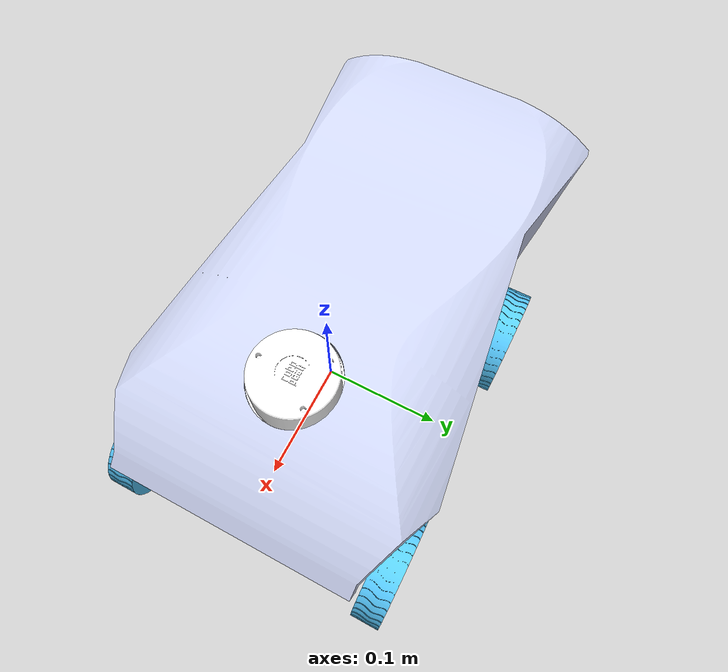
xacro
<?xml version='1.0'?>

<robot name="mark2" xmlns:xacro="http://www.ros.org/wiki/xacro">

  <xacro:include filename="$(find mark2_description)/urdf/mark2.gazebo" />
  <xacro:include filename="$(find mark2_description)/urdf/materials.xacro" />
  <xacro:include filename="$(find mark2_description)/urdf/macros.xacro" />

  <link name="base_link">
    <inertial>
      <origin
        xyz="-0.0216892711019691 0.0103354525192359 -2.11356546216501E-05"
        rpy="0 0 0" />
      <mass
        value="18.0131886031404" />
      <inertia
        ixx="0.0634208971678187"
        ixy="0.00171443755856836"
        ixz="-1.08883604791302E-05"
        iyy="0.122914143505658"
        iyz="-7.40778606255006E-06"
        izz="0.0722386849657522" />
    </inertial>
    <visual>
      <origin
        xyz="0 0 0"
        rpy="0 0 0" />
      <geometry>
        <mesh
          filename="package://mark2_description/meshes/base_link.STL" />
      </geometry>
      <material
        name="">
        <color
          rgba="0.792156862745098 0.819607843137255 0.933333333333333 1" />
      </material>
    </visual>
    <collision>
      <origin
        xyz="0 0 0"
        rpy="0 0 0" />
      <geometry>
        <mesh
          filename="package://mark2_description/meshes/base_link.STL" />
      </geometry>
    </collision>
  </link>

  <link name="FL_Wheel_Link">
    <inertial>
      <origin
        xyz="4.1633E-17 -1.5266E-16 -0.012545"
        rpy="0 0 0" />
      <mass
        value="0.16003" />
      <inertia
        ixx="0.0001273"
        ixy="-1.3285E-19"
        ixz="2.5754E-19"
        iyy="0.0001273"
        iyz="-3.9006E-19"
        izz="0.00023804" />
    </inertial>
    <visual>
      <origin
        xyz="0 0 0"
        rpy="0 0 0" />
      <geometry>
        <mesh
          filename="package://mark2_description/meshes/FL_Wheel_Link.STL" />
      </geometry>
      <material
        name="">
        <color
          rgba="0.34118 0.79216 1 1" />
      </material>
    </visual>
    <collision>
      <origin
        xyz="0 0 0"
        rpy="0 0 0" />
      <geometry>
        <mesh
          filename="package://mark2_description/meshes/FL_Wheel_Link.STL" />
      </geometry>
    </collision>
  </link>
  <joint name="FL_Wheel_Joint"
    type="continuous">
    <origin
      xyz="0.1175 0.1066 -0.039"
      rpy="1.5708 0 0" />
    <parent
      link="base_link" />
    <child
      link="FL_Wheel_Link" />
    <axis
      xyz="0 0 1" />
  </joint>

  <link name="BL_Wheel_Link">
    <inertial>
      <origin
        xyz="2.7756E-17 -6.9389E-17 -0.005545"
        rpy="0 0 0" />
      <mass
        value="0.16003" />
      <inertia
        ixx="0.0001273"
        ixy="4.652E-20"
        ixz="4.0057E-19"
        iyy="0.0001273"
        iyz="-4.1804E-19"
        izz="0.00023804" />
    </inertial>
    <visual>
      <origin
        xyz="0 0 0"
        rpy="0 0 0" />
      <geometry>
        <mesh
          filename="package://mark2_description/meshes/BL_Wheel_Link.STL" />
      </geometry>
      <material
        name="">
        <color
          rgba="0.34118 0.79216 1 1" />
      </material>
    </visual>
    <collision>
      <origin
        xyz="0 0 0"
        rpy="0 0 0" />
      <geometry>
        <mesh
          filename="package://mark2_description/meshes/BL_Wheel_Link.STL" />
      </geometry>
    </collision>
  </link>
  <joint name="BL_Wheel_Joint"
    type="fixed">
    <origin
      xyz="-0.1175 0.1136 -0.039"
      rpy="-1.5708 0 3.1416" />
    <parent
      link="base_link" />
    <child
      link="BL_Wheel_Link" />
    <axis
      xyz="0 0 1" />
  </joint>

  <link name="BR_Wheel_Link">
    <inertial>
      <origin
        xyz="2.7756E-17 -2.7756E-17 0.0055462"
        rpy="1 0 0" />
      <mass
        value="0.15999" />
      <inertia
        ixx="0.00012727"
        ixy="9.8997E-21"
        ixz="-4.0039E-19"
        iyy="0.00012727"
        iyz="3.593E-19"
        izz="0.00023798" />
    </inertial>
    <visual>
      <origin
        xyz="0 0 0"
        rpy="0 0 0" />
      <geometry>
        <mesh
          filename="package://mark2_description/meshes/BR_Wheel_Link.STL" />
      </geometry>
      <material
        name="">
        <color
          rgba="0.34118 0.79216 1 1" />
      </material>
    </visual>
    <collision>
      <origin
        xyz="0 0 0"
        rpy="0 0 0" />
      <geometry>
        <mesh
          filename="package://mark2_description/meshes/BR_Wheel_Link.STL" />
      </geometry>
    </collision>
  </link>
  <joint name="BR_Wheel_Joint"
    type="fixed">
    <origin
      xyz="-0.1175 -0.1136 -0.039"
      rpy="1.5708 0.0038768 0" />
    <parent
      link="base_link" />
    <child
      link="BR_Wheel_Link" />
    <axis
      xyz="0 0 1" />
  </joint>

  <link name="FR_Wheel_Link">
    <inertial>
      <origin
        xyz="2.7756E-17 4.1633E-17 0.012546"
        rpy="0 0 0" />
      <mass
        value="0.15999" />
      <inertia
        ixx="0.00012727"
        ixy="1.9408E-19"
        ixz="-4.5722E-19"
        iyy="0.00012727"
        iyz="4.4947E-19"
        izz="0.00023798" />
    </inertial>
    <visual>
      <origin
        xyz="0 0 0"
        rpy="0 0 0" />
      <geometry>
        <mesh
          filename="package://mark2_description/meshes/FR_Wheel_Link.STL" />
      </geometry>
      <material
        name="">
        <color
          rgba="0.34118 0.79216 1 1" />
      </material>
    </visual>
    <collision>
      <origin
        xyz="0 0 0"
        rpy="0 0 0" />
      <geometry>
        <mesh
          filename="package://mark2_description/meshes/FR_Wheel_Link.STL" />
      </geometry>
    </collision>
  </link>
  <joint name="FR_Wheel_Joint"
    type="continuous">
    <origin
      xyz="0.1175 -0.1066 -0.039"
      rpy="1.5708 -0.0038768 0" />
    <parent
      link="base_link" />
    <child
      link="FR_Wheel_Link" />
    <axis
      xyz="0 0 1" />
  </joint>

  <link name="RPLIdar_Link">
    <inertial>
      <origin
        xyz="0 0 0"
        rpy="0 0 0" />
      <mass
        value="0" />
      <inertia
        ixx="0"
        ixy="0"
        ixz="0"
        iyy="0"
        iyz="0"
        izz="0" />
    </inertial>
    <visual>
      <origin
        xyz="0 0 0"
        rpy="0 0 0" />
      <geometry>
        <mesh
          filename="package://mark2_description/meshes/RPLIdar_Link.STL" />
      </geometry>
      <material
        name="">
        <color
          rgba="1 1 1 1" />
      </material>
    </visual>
    <collision>
      <origin
        xyz="0 0 0"
        rpy="0 0 0" />
      <geometry>
        <mesh
          filename="package://mark2_description/meshes/RPLIdar_Link.STL" />
      </geometry>
    </collision>
  </link>
  <joint name="RPLIdar_Joint"
    type="fixed">
    <origin
      xyz="0.035526 0.00030663 0.079529"
      rpy="1.5708 0 3.1416" />
    <parent
      link="base_link" />
    <child
      link="RPLIdar_Link" />
    <axis
      xyz="0 0 0" />
  </joint>
</robot>
